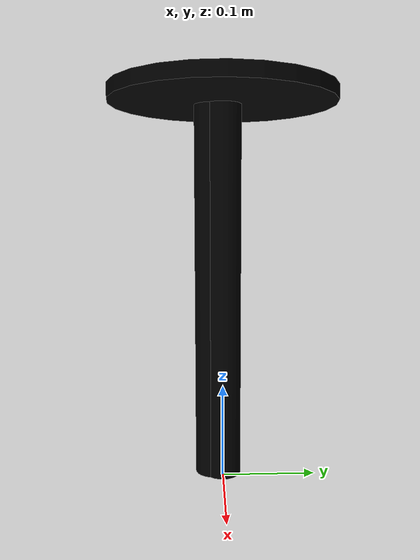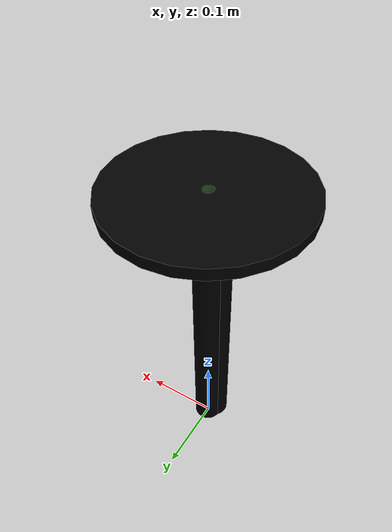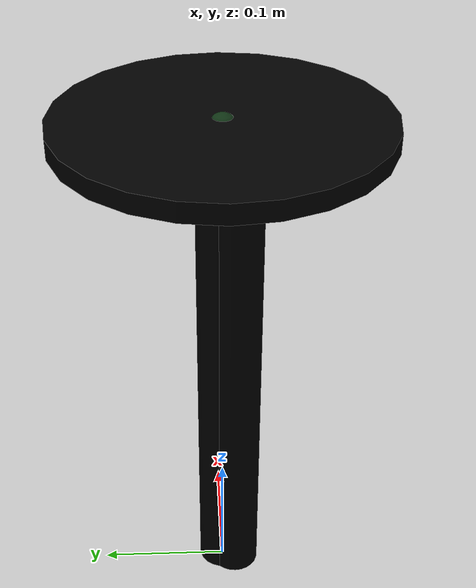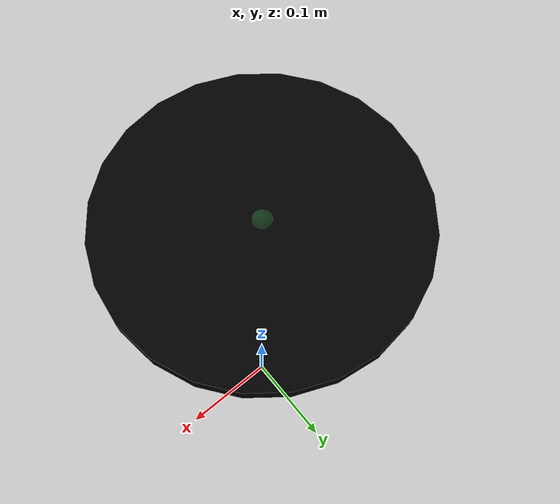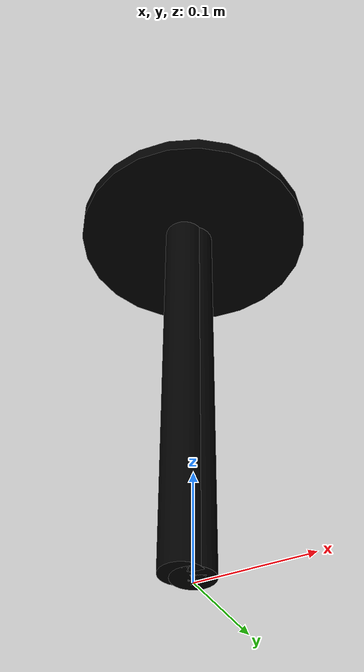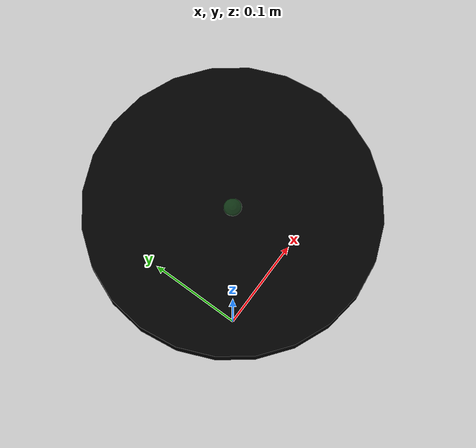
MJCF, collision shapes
<mujoco model="chair_agne_0007">
  <custom>
    <numeric data="0.18 0.240276 0.012372 0.528869 -0.459028 0.536906 0.47045" name="0_part0_initpos" />
    <numeric data="-0.231087 0.269313 0.012537 0.706067 -0.705221 0.037962 -0.051879" name="1_part1_initpos" />
    <numeric data="-0.033647 -0.085565 0.00896 0.0 0.327939 0.944699 0.0" name="2_part2_initpos" />
  </custom>
  <asset>
    <mesh file="chair_agne_0007/leg1L.stl" name="leg1" scale="0.0005 0.0005 0.0005" />
    <mesh file="chair_agne_0007/leg2L.stl" name="leg2" scale="0.0005 0.0005 0.0005" />
    <mesh file="chair_agne_0007/seat.stl" name="seat" scale="0.0005 0.0005 0.0005" />
    <texture file="../textures/light-wood.png" name="tex-light-wood" type="2d" />
    <material name="light-wood" reflectance="0.5" texrepeat="20 20" texture="tex-light-wood" texuniform="true" />
  </asset>
  <worldbody><body name="combined_body" pos="0 0 0.1987787780761719" quat="1 0 0 0"><geom conaffinity="0" contype="0" density="0" material="light-wood" mesh="leg1" name="0_part0_mesh" pos="0 0 0" rgba="0.82 0.71 0.55 1" type="mesh" quat="1 0 0 0" />
      <geom density="90" name="noviz_collision_0_part0_1" pos="0 0 0" rgba="0 0 0 0" size="0.016 0.12" solref="0.001 1.5" type="cylinder" quat="1 0 0 0" />
      <geom density="70" name="noviz_collision_0_part0_2" pos="0 0 0" rgba="0 0 0 0" size="0.019 0.195" solref="0.001 1.5" type="cylinder" quat="1 0 0 0" />
      <geom density="70" name="noviz_collision_0_part0_3" pos="0 0 0" rgba="0 0 0 0" size="0.019 0.195" solref="0.001 1.5" type="cylinder" quat="1 0 0 0" />
      <site group="1" name="0_part0_ltgt_site0" pos="0 0 0" rgba="0 0 0 0" size="0.01 0.01 0.01" type="sphere" quat="1 0 0 0" />
      <site group="1" name="0_part0_rtgt_site0" pos="0 0 0" rgba="0 0 0 0" size="0.01 0.01 0.01" type="sphere" quat="1 0 0 0" />
      <site name="leg1-leg2,0,180,conn_site" pos="0 0 0" rgba="0.9019 0.0980 0.2941 0.3" size="0.01" quat="1 0 0 0" />
      <site name="leg1-seat,0,180,conn_site" pos="0 0 0" rgba="0.2352 0.7058 0.2941 0.3" size="0.01" quat="1 0 0 0" />
      <site name="0_part0_bottom_site" pos="0 0 0" rgba="0 0 0 0" size="0.01" quat="1 0 0 0" />
      <site name="0_part0_top_site" pos="0 0 0" rgba="0 0 0 0" size="0.01" quat="1 0 0 0" />
      <site name="0_part0_horizontal_radius_site" pos="0 0 0" rgba="0 0 0 0" size="0.04" quat="1 0 0 0" />
    <geom conaffinity="0" contype="0" density="0" material="light-wood" mesh="leg2" name="1_part1_mesh" pos="-0.005 -0.01 0" rgba="0.82 0.71 0.55 1" type="mesh" quat="1 0 0 0" />
      <geom density="90" name="noviz_collision_1_part1_1" pos="-0.005 -0.01 0" rgba="0 0 0 0" size="0.016 0.12" solref="0.001 1.5" type="cylinder" quat="1 0 0 0" />
      <geom density="70" name="noviz_collision_1_part1_2" pos="-0.005 -0.01 0" rgba="0 0 0 0" size="0.019 0.195" solref="0.001 1.5" type="cylinder" quat="1 0 0 0" />
      <geom density="70" name="noviz_collision_1_part1_3" pos="-0.005 -0.01 0" rgba="0 0 0 0" size="0.019 0.195" solref="0.001 1.5" type="cylinder" quat="1 0 0 0" />
      <site group="1" name="1_part1_rtgt_site0" pos="-0.005 -0.01 0" rgba="0 0 0 0" size="0.01 0.01 0.01" type="sphere" quat="1 0 0 0" />
      <site group="1" name="1_part1_ltgt_site0" pos="-0.005 -0.01 0" rgba="0 0 0 0" size="0.01 0.01 0.01" type="sphere" quat="1 0 0 0" />
      <site name="leg2-leg1,0,180,conn_site" pos="-0.005 -0.01 0" rgba="0.9019 0.0980 0.2941 0.3" size="0.01" quat="1 0 0 0" />
      <site name="1_part1_bottom_site" pos="-0.005 -0.01 0" rgba="0 0 0 0" size="0.01" quat="1 0 0 0" />
      <site name="1_part1_top_site" pos="-0.005 -0.01 0" rgba="0 0 0 0" size="0.01" quat="1 0 0 0" />
      <site name="1_part1_horizontal_radius_site" pos="-0.005 -0.01 0" rgba="0 0 0 0" size="0.04" quat="1 0 0 0" />
    <geom conaffinity="0" contype="0" density="0" material="light-wood" mesh="seat" name="2_part2_mesh" pos="0 0 0.2" rgba="0.82 0.71 0.55 1" type="mesh" quat="1 0 0 0" />
      <geom density="100" name="noviz_collision_2_part2" pos="0 0 0.2" rgba="0 0 0 0" size="0.115 0.007" solref="0.001 1" type="cylinder" quat="1 0 0 0" />
      <site name="seat-leg1,0,180,conn_site" pos="0 0 0.2" rgba="0.2352 0.7058 0.2941 0.3" size="0.01" quat="1 0 0 0" />
      <site name="2_part2_bottom_site" pos="0 0 0.2" rgba="0 0 0 0" size="0.003" quat="1 0 0 0" />
      <site name="2_part2_top_site" pos="0 0 0.2" rgba="0 0 0 0" size="0.003" quat="1 0 0 0" />
      <site name="2_part2_horizontal_radius_site" pos="0 0 0.2" rgba="0 0 0 0" size="0.1" quat="1 0 0 0" />
    </body></worldbody><actuator /><sensor /><contact /><default /></mujoco>
